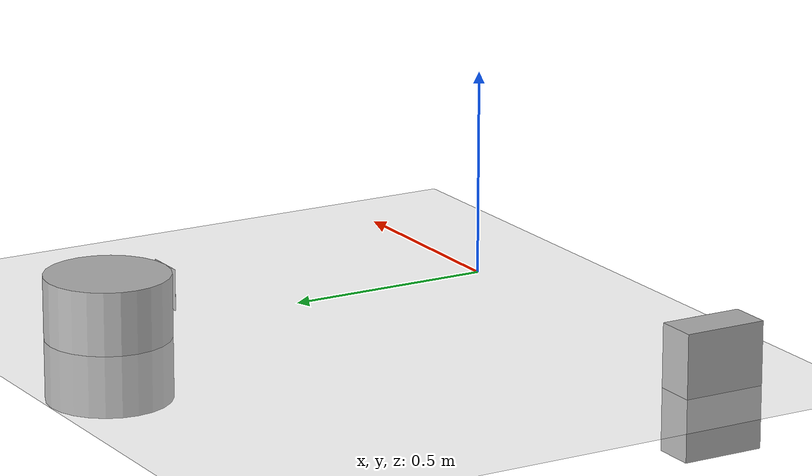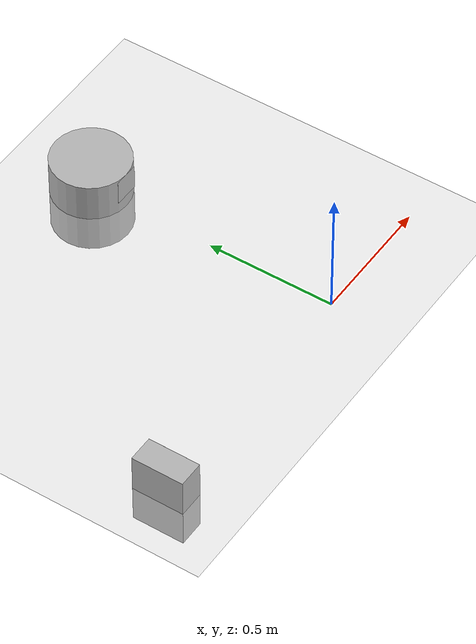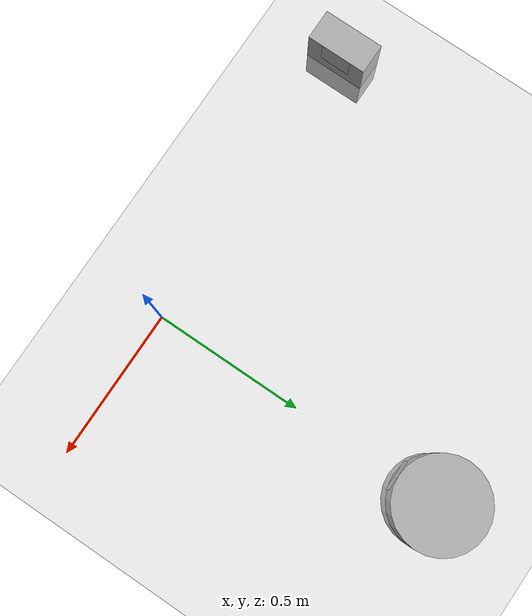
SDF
<sdf version='1.6'>
  <world name='default'>
    <include>
      <uri>model://sun</uri>
    </include>
    <include>
      <uri>model://ground_plane</uri>
    </include>
    <include>
      <name>aruco_marker1</name>
      <uri>model://aruco_marker1_box</uri>
      <pose frame=''>-1 0 0 0 -0 0</pose>
    </include>
    <include>
      <name>aruco_marker2</name>
      <uri>model://aruco_marker2_cylinder</uri>
      <pose frame=''>0 1 0 0 -0 -1.57</pose>
    </include>

    <plugin name="ros_link_attacher_plugin" filename="libgazebo_ros_link_attacher.so" />

    <gui fullscreen='0'>
      <camera name='user_camera'>
        <pose frame=''>12.804 6.59761 20.6782 0 0.963643 -2.65182</pose>
        <view_controller>orbit</view_controller>
        <projection_type>perspective</projection_type>
      </camera>
    </gui>
  </world>
</sdf>

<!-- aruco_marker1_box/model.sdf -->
<sdf version="1.6">
  <model name="aruco_marker">
    <link name="link">
      <inertial>
        <pose>0 0 0 0 0 0</pose>
        <mass>1</mass>
        <inertia>
          <ixx>0.083</ixx>
          <ixy>0.0</ixy>
          <ixz>0.0</ixz>
          <iyy>0.083</iyy>
          <iyz>0.0</iyz>
          <izz>0.083</izz>
        </inertia>
      </inertial>
      <visual name="front_visual">
        <pose>0.05 0 0.1 0 0 0</pose>
        <geometry>
          <box>
            <size>0.0001 0.10 0.10</size>
          </box>
        </geometry>
        <material>
          <script>
            <uri>materials/scripts</uri>
            <uri>materials/textures</uri>
            <name>Marker</name>
          </script>
        </material>
      </visual>
      <!-- Hide the marker from the back -->
      <visual name="rear_visual">
        <pose>-0.00005 0 0 0 0 0</pose>
        <geometry>
          <box>
            <size>0.10 0.20 0.30</size>
          </box>
        </geometry>
      </visual>
      <collision name="collision">
        <pose>0 0 0 0 0 0</pose>
        <geometry>
          <box>
            <size>0.10 0.20 0.30</size>
          </box>
        </geometry>
      </collision>
    </link>
  </model>
</sdf>

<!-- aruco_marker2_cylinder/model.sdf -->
<sdf version="1.6">
  <model name="aruco_marker">
    <link name="link">
      <inertial>
        <pose>0 0 0 0 0 0</pose>
        <mass>1</mass>
        <inertia>
          <ixx>0.083</ixx>
          <ixy>0.0</ixy>
          <ixz>0.0</ixz>
          <iyy>0.083</iyy>
          <iyz>0.0</iyz>
          <izz>0.083</izz>
        </inertia>
      </inertial>
      <visual name="front_visual">
        <pose>0.15005 0 0.1 0 0 0</pose>
        <geometry>
          <box>
            <size>0.0001 0.10 0.10</size>
          </box>
        </geometry>
        <material>
          <script>
            <uri>model://materials/scripts</uri>
            <uri>model://materials/textures</uri>
            <name>Marker</name>
          </script>
        </material>
      </visual>
      <!-- Hide the marker from the back -->
      <visual name="rear_visual">
        <pose>0 0 0 0 0 0</pose>
        <geometry>
            <cylinder>
              <radius>0.15</radius>
              <length>0.3</length>
            </cylinder>
        </geometry>
      </visual>
      <collision name="collision">
        <pose>0 0 0 0 0 0</pose>
        <geometry>
            <cylinder>
              <radius>0.15</radius>
              <length>0.3</length>
            </cylinder>
        </geometry>
      </collision>
    </link>
  </model>
</sdf>
